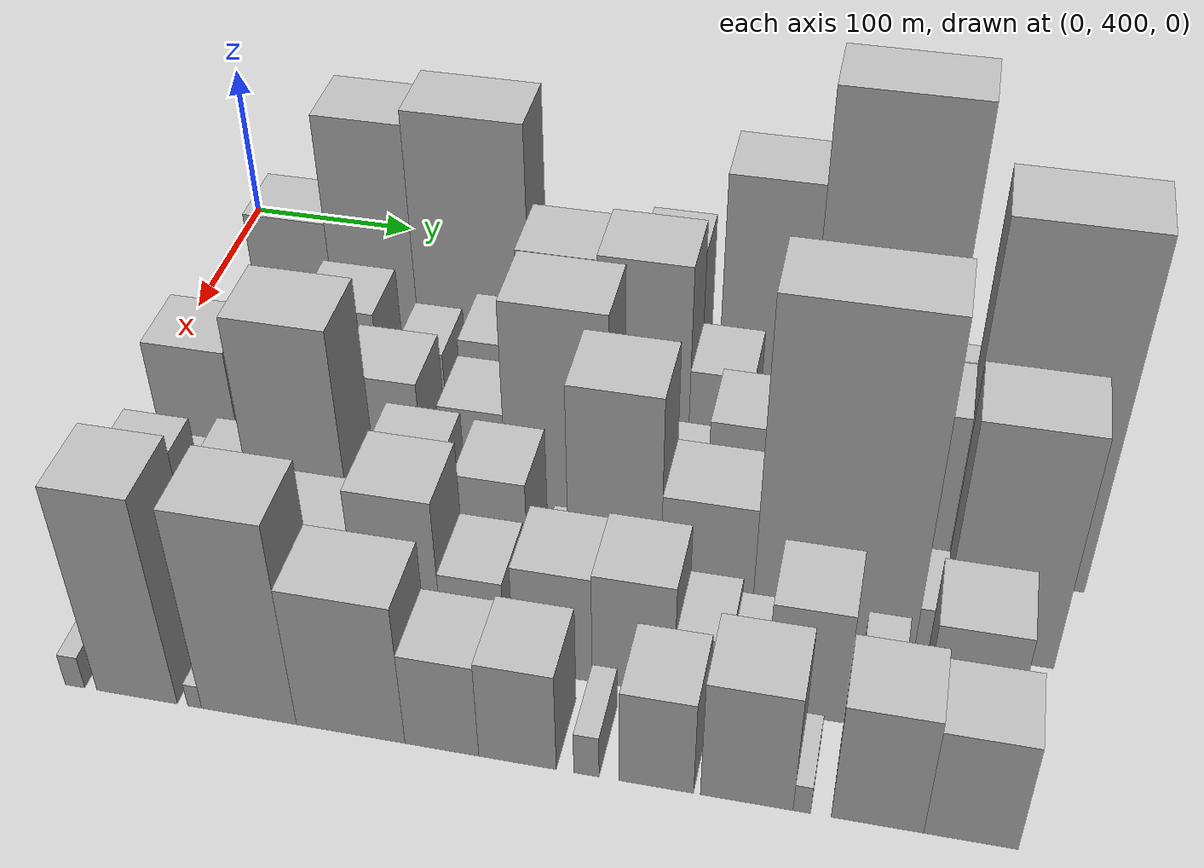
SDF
<sdf version="1.6">
 <world name="default">
  <model name="building_36">
   <static>1</static>
   <pose>100.0000 470.6741 0 0.000000 0.000000 0.000000</pose>
   <link name="link">
    <pose>0 0 43.50 0 0 0</pose>
    <collision name="collision"><geometry><box><size>40.0000 46.3534 87.0000</size></box></geometry></collision>
    <visual name="visual">
     <cast_shadows>0</cast_shadows>
     <geometry><box><size>40.0000 46.3534 87.0000</size></box></geometry>
     <material>
      <script>
       <uri>model://HANNAS_wall/materials/scripts</uri>
       <uri>model://HANNAS_wall/materials/textures</uri>
       <name>vrc/HANNAS_wall</name>
      </script>
     </material>
    </visual>
   </link>
  </model>
  <model name="building_37">
   <static>1</static>
   <pose>100.0000 518.1306 0 0.000000 0.000000 0.000000</pose>
   <link name="link">
    <pose>0 0 78.00 0 0 0</pose>
    <collision name="collision"><geometry><box><size>40.0000 48.5595 156.0000</size></box></geometry></collision>
    <visual name="visual">
     <cast_shadows>0</cast_shadows>
     <geometry><box><size>40.0000 48.5595 156.0000</size></box></geometry>
     <material>
      <script>
       <uri>model://HANNAS_wall/materials/scripts</uri>
       <uri>model://HANNAS_wall/materials/textures</uri>
       <name>vrc/HANNAS_wall</name>
      </script>
     </material>
    </visual>
   </link>
  </model>
  <model name="building_38">
   <static>1</static>
   <pose>100.0000 574.7804 0 0.000000 0.000000 0.000000</pose>
   <link name="link">
    <pose>0 0 82.50 0 0 0</pose>
    <collision name="collision"><geometry><box><size>40.0000 64.7402 165.0000</size></box></geometry></collision>
    <visual name="visual">
     <cast_shadows>0</cast_shadows>
     <geometry><box><size>40.0000 64.7402 165.0000</size></box></geometry>
     <material>
      <script>
       <uri>model://HANNAS_wall/materials/scripts</uri>
       <uri>model://HANNAS_wall/materials/textures</uri>
       <name>vrc/HANNAS_wall</name>
      </script>
     </material>
    </visual>
   </link>
  </model>
  <model name="building_39">
   <static>1</static>
   <pose>100.0000 615.2542 0 0.000000 0.000000 0.000000</pose>
   <link name="link">
    <pose>0 0 15.00 0 0 0</pose>
    <collision name="collision"><geometry><box><size>40.0000 16.2075 30.0000</size></box></geometry></collision>
    <visual name="visual">
     <cast_shadows>0</cast_shadows>
     <geometry><box><size>40.0000 16.2075 30.0000</size></box></geometry>
     <material>
      <script>
       <uri>model://HANNAS_wall/materials/scripts</uri>
       <uri>model://HANNAS_wall/materials/textures</uri>
       <name>vrc/HANNAS_wall</name>
      </script>
     </material>
    </visual>
   </link>
  </model>
  <model name="building_40">
   <static>1</static>
   <pose>100.0000 645.7013 0 0.000000 0.000000 0.000000</pose>
   <link name="link">
    <pose>0 0 39.00 0 0 0</pose>
    <collision name="collision"><geometry><box><size>40.0000 44.6866 78.0000</size></box></geometry></collision>
    <visual name="visual">
     <cast_shadows>0</cast_shadows>
     <geometry><box><size>40.0000 44.6866 78.0000</size></box></geometry>
     <material>
      <script>
       <uri>model://HANNAS_wall/materials/scripts</uri>
       <uri>model://HANNAS_wall/materials/textures</uri>
       <name>vrc/HANNAS_wall</name>
      </script>
     </material>
    </visual>
   </link>
  </model>
  <model name="building_41">
   <static>1</static>
   <pose>100.0000 685.2776 0 0.000000 0.000000 0.000000</pose>
   <link name="link">
    <pose>0 0 48.00 0 0 0</pose>
    <collision name="collision"><geometry><box><size>40.0000 34.4660 96.0000</size></box></geometry></collision>
    <visual name="visual">
     <cast_shadows>0</cast_shadows>
     <geometry><box><size>40.0000 34.4660 96.0000</size></box></geometry>
     <material>
      <script>
       <uri>model://HANNAS_wall/materials/scripts</uri>
       <uri>model://HANNAS_wall/materials/textures</uri>
       <name>vrc/HANNAS_wall</name>
      </script>
     </material>
    </visual>
   </link>
  </model>
  <model name="building_42">
   <static>1</static>
   <pose>100.0000 737.0859 0 0.000000 0.000000 0.000000</pose>
   <link name="link">
    <pose>0 0 75.00 0 0 0</pose>
    <collision name="collision"><geometry><box><size>40.0000 49.1505 150.0000</size></box></geometry></collision>
    <visual name="visual">
     <cast_shadows>0</cast_shadows>
     <geometry><box><size>40.0000 49.1505 150.0000</size></box></geometry>
     <material>
      <script>
       <uri>model://HANNAS_wall/materials/scripts</uri>
       <uri>model://HANNAS_wall/materials/textures</uri>
       <name>vrc/HANNAS_wall</name>
      </script>
     </material>
    </visual>
   </link>
  </model>
  <model name="building_43">
   <static>1</static>
   <pose>100.0000 799.0678 0 0.000000 0.000000 0.000000</pose>
   <link name="link">
    <pose>0 0 103.50 0 0 0</pose>
    <collision name="collision"><geometry><box><size>40.0000 74.8134 207.0000</size></box></geometry></collision>
    <visual name="visual">
     <cast_shadows>0</cast_shadows>
     <geometry><box><size>40.0000 74.8134 207.0000</size></box></geometry>
     <material>
      <script>
       <uri>model://HANNAS_wall/materials/scripts</uri>
       <uri>model://HANNAS_wall/materials/textures</uri>
       <name>vrc/HANNAS_wall</name>
      </script>
     </material>
    </visual>
   </link>
  </model>
  <model name="building_44">
   <static>1</static>
   <pose>100.0000 849.8463 0 0.000000 0.000000 0.000000</pose>
   <link name="link">
    <pose>0 0 15.00 0 0 0</pose>
    <collision name="collision"><geometry><box><size>40.0000 16.7435 30.0000</size></box></geometry></collision>
    <visual name="visual">
     <cast_shadows>0</cast_shadows>
     <geometry><box><size>40.0000 16.7435 30.0000</size></box></geometry>
     <material>
      <script>
       <uri>model://HANNAS_wall/materials/scripts</uri>
       <uri>model://HANNAS_wall/materials/textures</uri>
       <name>vrc/HANNAS_wall</name>
      </script>
     </material>
    </visual>
   </link>
  </model>
  <model name="building_45">
   <static>1</static>
   <pose>100.0000 881.0753 0 0.000000 0.000000 0.000000</pose>
   <link name="link">
    <pose>0 0 45.00 0 0 0</pose>
    <collision name="collision"><geometry><box><size>40.0000 45.7145 90.0000</size></box></geometry></collision>
    <visual name="visual">
     <cast_shadows>0</cast_shadows>
     <geometry><box><size>40.0000 45.7145 90.0000</size></box></geometry>
     <material>
      <script>
       <uri>model://HANNAS_wall/materials/scripts</uri>
       <uri>model://HANNAS_wall/materials/textures</uri>
       <name>vrc/HANNAS_wall</name>
      </script>
     </material>
    </visual>
   </link>
  </model>
  <model name="building_79">
   <static>1</static>
   <pose>152.0000 475.0976 0 0.000000 0.000000 0.000000</pose>
   <link name="link">
    <pose>0 0 22.50 0 0 0</pose>
    <collision name="collision"><geometry><box><size>40.0000 24.0922 45.0000</size></box></geometry></collision>
    <visual name="visual">
     <cast_shadows>0</cast_shadows>
     <geometry><box><size>40.0000 24.0922 45.0000</size></box></geometry>
     <material>
      <script>
       <uri>model://HANNAS_wall/materials/scripts</uri>
       <uri>model://HANNAS_wall/materials/textures</uri>
       <name>vrc/HANNAS_wall</name>
      </script>
     </material>
    </visual>
   </link>
  </model>
  <model name="building_80">
   <static>1</static>
   <pose>152.0000 516.3188 0 0.000000 0.000000 0.000000</pose>
   <link name="link">
    <pose>0 0 36.00 0 0 0</pose>
    <collision name="collision"><geometry><box><size>40.0000 40.3503 72.0000</size></box></geometry></collision>
    <visual name="visual">
     <cast_shadows>0</cast_shadows>
     <geometry><box><size>40.0000 40.3503 72.0000</size></box></geometry>
     <material>
      <script>
       <uri>model://HANNAS_wall/materials/scripts</uri>
       <uri>model://HANNAS_wall/materials/textures</uri>
       <name>vrc/HANNAS_wall</name>
      </script>
     </material>
    </visual>
   </link>
  </model>
  <model name="building_81">
   <static>1</static>
   <pose>152.0000 539.9436 0 0.000000 0.000000 0.000000</pose>
   <link name="link">
    <pose>0 0 7.50 0 0 0</pose>
    <collision name="collision"><geometry><box><size>40.0000 6.8993 15.0000</size></box></geometry></collision>
    <visual name="visual">
     <cast_shadows>0</cast_shadows>
     <geometry><box><size>40.0000 6.8993 15.0000</size></box></geometry>
     <material>
      <script>
       <uri>model://HANNAS_wall/materials/scripts</uri>
       <uri>model://HANNAS_wall/materials/textures</uri>
       <name>vrc/HANNAS_wall</name>
      </script>
     </material>
    </visual>
   </link>
  </model>
  <model name="building_82">
   <static>1</static>
   <pose>152.0000 559.5300 0 0.000000 0.000000 0.000000</pose>
   <link name="link">
    <pose>0 0 25.50 0 0 0</pose>
    <collision name="collision"><geometry><box><size>40.0000 26.2735 51.0000</size></box></geometry></collision>
    <visual name="visual">
     <cast_shadows>0</cast_shadows>
     <geometry><box><size>40.0000 26.2735 51.0000</size></box></geometry>
     <material>
      <script>
       <uri>model://HANNAS_wall/materials/scripts</uri>
       <uri>model://HANNAS_wall/materials/textures</uri>
       <name>vrc/HANNAS_wall</name>
      </script>
     </material>
    </visual>
   </link>
  </model>
  <model name="building_83">
   <static>1</static>
   <pose>152.0000 598.1043 0 0.000000 0.000000 0.000000</pose>
   <link name="link">
    <pose>0 0 31.50 0 0 0</pose>
    <collision name="collision"><geometry><box><size>40.0000 32.8750 63.0000</size></box></geometry></collision>
    <visual name="visual">
     <cast_shadows>0</cast_shadows>
     <geometry><box><size>40.0000 32.8750 63.0000</size></box></geometry>
     <material>
      <script>
       <uri>model://HANNAS_wall/materials/scripts</uri>
       <uri>model://HANNAS_wall/materials/textures</uri>
       <name>vrc/HANNAS_wall</name>
      </script>
     </material>
    </visual>
   </link>
  </model>
  <model name="building_84">
   <static>1</static>
   <pose>152.0000 635.3992 0 0.000000 0.000000 0.000000</pose>
   <link name="link">
    <pose>0 0 63.00 0 0 0</pose>
    <collision name="collision"><geometry><box><size>40.0000 41.7149 126.0000</size></box></geometry></collision>
    <visual name="visual">
     <cast_shadows>0</cast_shadows>
     <geometry><box><size>40.0000 41.7149 126.0000</size></box></geometry>
     <material>
      <script>
       <uri>model://HANNAS_wall/materials/scripts</uri>
       <uri>model://HANNAS_wall/materials/textures</uri>
       <name>vrc/HANNAS_wall</name>
      </script>
     </material>
    </visual>
   </link>
  </model>
  <model name="building_85">
   <static>1</static>
   <pose>152.0000 680.5668 0 0.000000 0.000000 0.000000</pose>
   <link name="link">
    <pose>0 0 64.50 0 0 0</pose>
    <collision name="collision"><geometry><box><size>40.0000 48.6203 129.0000</size></box></geometry></collision>
    <visual name="visual">
     <cast_shadows>0</cast_shadows>
     <geometry><box><size>40.0000 48.6203 129.0000</size></box></geometry>
     <material>
      <script>
       <uri>model://HANNAS_wall/materials/scripts</uri>
       <uri>model://HANNAS_wall/materials/textures</uri>
       <name>vrc/HANNAS_wall</name>
      </script>
     </material>
    </visual>
   </link>
  </model>
  <model name="building_86">
   <static>1</static>
   <pose>152.0000 721.2533 0 0.000000 0.000000 0.000000</pose>
   <link name="link">
    <pose>0 0 31.50 0 0 0</pose>
    <collision name="collision"><geometry><box><size>40.0000 32.7527 63.0000</size></box></geometry></collision>
    <visual name="visual">
     <cast_shadows>0</cast_shadows>
     <geometry><box><size>40.0000 32.7527 63.0000</size></box></geometry>
     <material>
      <script>
       <uri>model://HANNAS_wall/materials/scripts</uri>
       <uri>model://HANNAS_wall/materials/textures</uri>
       <name>vrc/HANNAS_wall</name>
      </script>
     </material>
    </visual>
   </link>
  </model>
  <model name="building_87">
   <static>1</static>
   <pose>152.0000 747.0359 0 0.000000 0.000000 0.000000</pose>
   <link name="link">
    <pose>0 0 16.50 0 0 0</pose>
    <collision name="collision"><geometry><box><size>40.0000 18.8125 33.0000</size></box></geometry></collision>
    <visual name="visual">
     <cast_shadows>0</cast_shadows>
     <geometry><box><size>40.0000 18.8125 33.0000</size></box></geometry>
     <material>
      <script>
       <uri>model://HANNAS_wall/materials/scripts</uri>
       <uri>model://HANNAS_wall/materials/textures</uri>
       <name>vrc/HANNAS_wall</name>
      </script>
     </material>
    </visual>
   </link>
  </model>
  <model name="building_88">
   <static>1</static>
   <pose>152.0000 766.4454 0 0.000000 0.000000 0.000000</pose>
   <link name="link">
    <pose>0 0 18.00 0 0 0</pose>
    <collision name="collision"><geometry><box><size>40.0000 20.0063 36.0000</size></box></geometry></collision>
    <visual name="visual">
     <cast_shadows>0</cast_shadows>
     <geometry><box><size>40.0000 20.0063 36.0000</size></box></geometry>
     <material>
      <script>
       <uri>model://HANNAS_wall/materials/scripts</uri>
       <uri>model://HANNAS_wall/materials/textures</uri>
       <name>vrc/HANNAS_wall</name>
      </script>
     </material>
    </visual>
   </link>
  </model>
  <model name="building_89">
   <static>1</static>
   <pose>152.0000 800.3809 0 0.000000 0.000000 0.000000</pose>
   <link name="link">
    <pose>0 0 28.50 0 0 0</pose>
    <collision name="collision"><geometry><box><size>40.0000 33.8649 57.0000</size></box></geometry></collision>
    <visual name="visual">
     <cast_shadows>0</cast_shadows>
     <geometry><box><size>40.0000 33.8649 57.0000</size></box></geometry>
     <material>
      <script>
       <uri>model://HANNAS_wall/materials/scripts</uri>
       <uri>model://HANNAS_wall/materials/textures</uri>
       <name>vrc/HANNAS_wall</name>
      </script>
     </material>
    </visual>
   </link>
  </model>
  <model name="building_90">
   <static>1</static>
   <pose>152.0000 832.4794 0 0.000000 0.000000 0.000000</pose>
   <link name="link">
    <pose>0 0 30.00 0 0 0</pose>
    <collision name="collision"><geometry><box><size>40.0000 30.3319 60.0000</size></box></geometry></collision>
    <visual name="visual">
     <cast_shadows>0</cast_shadows>
     <geometry><box><size>40.0000 30.3319 60.0000</size></box></geometry>
     <material>
      <script>
       <uri>model://HANNAS_wall/materials/scripts</uri>
       <uri>model://HANNAS_wall/materials/textures</uri>
       <name>vrc/HANNAS_wall</name>
      </script>
     </material>
    </visual>
   </link>
  </model>
  <model name="building_91">
   <static>1</static>
   <pose>152.0000 857.3833 0 0.000000 0.000000 0.000000</pose>
   <link name="link">
    <pose>0 0 18.00 0 0 0</pose>
    <collision name="collision"><geometry><box><size>40.0000 19.4759 36.0000</size></box></geometry></collision>
    <visual name="visual">
     <cast_shadows>0</cast_shadows>
     <geometry><box><size>40.0000 19.4759 36.0000</size></box></geometry>
     <material>
      <script>
       <uri>model://HANNAS_wall/materials/scripts</uri>
       <uri>model://HANNAS_wall/materials/textures</uri>
       <name>vrc/HANNAS_wall</name>
      </script>
     </material>
    </visual>
   </link>
  </model>
  <model name="building_122">
   <static>1</static>
   <pose>204.0000 453.1643 0 0.000000 0.000000 0.000000</pose>
   <link name="link">
    <pose>0 0 39.00 0 0 0</pose>
    <collision name="collision"><geometry><box><size>40.0000 44.1281 78.0000</size></box></geometry></collision>
    <visual name="visual">
     <cast_shadows>0</cast_shadows>
     <geometry><box><size>40.0000 44.1281 78.0000</size></box></geometry>
     <material>
      <script>
       <uri>model://HANNAS_wall/materials/scripts</uri>
       <uri>model://HANNAS_wall/materials/textures</uri>
       <name>vrc/HANNAS_wall</name>
      </script>
     </material>
    </visual>
   </link>
  </model>
  <model name="building_123">
   <static>1</static>
   <pose>204.0000 504.6536 0 0.000000 0.000000 0.000000</pose>
   <link name="link">
    <pose>0 0 37.50 0 0 0</pose>
    <collision name="collision"><geometry><box><size>40.0000 40.8504 75.0000</size></box></geometry></collision>
    <visual name="visual">
     <cast_shadows>0</cast_shadows>
     <geometry><box><size>40.0000 40.8504 75.0000</size></box></geometry>
     <material>
      <script>
       <uri>model://HANNAS_wall/materials/scripts</uri>
       <uri>model://HANNAS_wall/materials/textures</uri>
       <name>vrc/HANNAS_wall</name>
      </script>
     </material>
    </visual>
   </link>
  </model>
  <model name="building_124">
   <static>1</static>
   <pose>204.0000 554.7654 0 0.000000 0.000000 0.000000</pose>
   <link name="link">
    <pose>0 0 37.50 0 0 0</pose>
    <collision name="collision"><geometry><box><size>40.0000 41.3731 75.0000</size></box></geometry></collision>
    <visual name="visual">
     <cast_shadows>0</cast_shadows>
     <geometry><box><size>40.0000 41.3731 75.0000</size></box></geometry>
     <material>
      <script>
       <uri>model://HANNAS_wall/materials/scripts</uri>
       <uri>model://HANNAS_wall/materials/textures</uri>
       <name>vrc/HANNAS_wall</name>
      </script>
     </material>
    </visual>
   </link>
  </model>
  <model name="building_125">
   <static>1</static>
   <pose>204.0000 602.3839 0 0.000000 0.000000 0.000000</pose>
   <link name="link">
    <pose>0 0 31.50 0 0 0</pose>
    <collision name="collision"><geometry><box><size>40.0000 33.8640 63.0000</size></box></geometry></collision>
    <visual name="visual">
     <cast_shadows>0</cast_shadows>
     <geometry><box><size>40.0000 33.8640 63.0000</size></box></geometry>
     <material>
      <script>
       <uri>model://HANNAS_wall/materials/scripts</uri>
       <uri>model://HANNAS_wall/materials/textures</uri>
       <name>vrc/HANNAS_wall</name>
      </script>
     </material>
    </visual>
   </link>
  </model>
  <model name="building_126">
   <static>1</static>
   <pose>204.0000 646.3026 0 0.000000 0.000000 0.000000</pose>
   <link name="link">
    <pose>0 0 67.50 0 0 0</pose>
    <collision name="collision"><geometry><box><size>40.0000 53.9734 135.0000</size></box></geometry></collision>
    <visual name="visual">
     <cast_shadows>0</cast_shadows>
     <geometry><box><size>40.0000 53.9734 135.0000</size></box></geometry>
     <material>
      <script>
       <uri>model://HANNAS_wall/materials/scripts</uri>
       <uri>model://HANNAS_wall/materials/textures</uri>
       <name>vrc/HANNAS_wall</name>
      </script>
     </material>
    </visual>
   </link>
  </model>
  <model name="building_127">
   <static>1</static>
   <pose>204.0000 687.3481 0 0.000000 0.000000 0.000000</pose>
   <link name="link">
    <pose>0 0 27.00 0 0 0</pose>
    <collision name="collision"><geometry><box><size>40.0000 28.1176 54.0000</size></box></geometry></collision>
    <visual name="visual">
     <cast_shadows>0</cast_shadows>
     <geometry><box><size>40.0000 28.1176 54.0000</size></box></geometry>
     <material>
      <script>
       <uri>model://HANNAS_wall/materials/scripts</uri>
       <uri>model://HANNAS_wall/materials/textures</uri>
       <name>vrc/HANNAS_wall</name>
      </script>
     </material>
    </visual>
   </link>
  </model>
  <model name="building_128">
   <static>1</static>
   <pose>204.0000 712.2546 0 0.000000 0.000000 0.000000</pose>
   <link name="link">
    <pose>0 0 19.50 0 0 0</pose>
    <collision name="collision"><geometry><box><size>40.0000 21.6954 39.0000</size></box></geometry></collision>
    <visual name="visual">
     <cast_shadows>0</cast_shadows>
     <geometry><box><size>40.0000 21.6954 39.0000</size></box></geometry>
     <material>
      <script>
       <uri>model://HANNAS_wall/materials/scripts</uri>
       <uri>model://HANNAS_wall/materials/textures</uri>
       <name>vrc/HANNAS_wall</name>
      </script>
     </material>
    </visual>
   </link>
  </model>
  <model name="building_129">
   <static>1</static>
   <pose>204.0000 745.1408 0 0.000000 0.000000 0.000000</pose>
   <link name="link">
    <pose>0 0 39.00 0 0 0</pose>
    <collision name="collision"><geometry><box><size>40.0000 44.0769 78.0000</size></box></geometry></collision>
    <visual name="visual">
     <cast_shadows>0</cast_shadows>
     <geometry><box><size>40.0000 44.0769 78.0000</size></box></geometry>
     <material>
      <script>
       <uri>model://HANNAS_wall/materials/scripts</uri>
       <uri>model://HANNAS_wall/materials/textures</uri>
       <name>vrc/HANNAS_wall</name>
      </script>
     </material>
    </visual>
   </link>
  </model>
  <model name="building_130">
   <static>1</static>
   <pose>204.0000 788.3259 0 0.000000 0.000000 0.000000</pose>
   <link name="link">
    <pose>0 0 67.50 0 0 0</pose>
    <collision name="collision"><geometry><box><size>40.0000 42.2933 135.0000</size></box></geometry></collision>
    <visual name="visual">
     <cast_shadows>0</cast_shadows>
     <geometry><box><size>40.0000 42.2933 135.0000</size></box></geometry>
     <material>
      <script>
       <uri>model://HANNAS_wall/materials/scripts</uri>
       <uri>model://HANNAS_wall/materials/textures</uri>
       <name>vrc/HANNAS_wall</name>
      </script>
     </material>
    </visual>
   </link>
  </model>
  <model name="building_131">
   <static>1</static>
   <pose>204.0000 826.9525 0 0.000000 0.000000 0.000000</pose>
   <link name="link">
    <pose>0 0 51.00 0 0 0</pose>
    <collision name="collision"><geometry><box><size>40.0000 34.9600 102.0000</size></box></geometry></collision>
    <visual name="visual">
     <cast_shadows>0</cast_shadows>
     <geometry><box><size>40.0000 34.9600 102.0000</size></box></geometry>
     <material>
      <script>
       <uri>model://HANNAS_wall/materials/scripts</uri>
       <uri>model://HANNAS_wall/materials/textures</uri>
       <name>vrc/HANNAS_wall</name>
      </script>
     </material>
    </visual>
   </link>
  </model>
  <model name="building_132">
   <static>1</static>
   <pose>204.0000 878.0598 0 0.000000 0.000000 0.000000</pose>
   <link name="link">
    <pose>0 0 108.00 0 0 0</pose>
    <collision name="collision"><geometry><box><size>40.0000 67.2545 216.0000</size></box></geometry></collision>
    <visual name="visual">
     <cast_shadows>0</cast_shadows>
     <geometry><box><size>40.0000 67.2545 216.0000</size></box></geometry>
     <material>
      <script>
       <uri>model://HANNAS_wall/materials/scripts</uri>
       <uri>model://HANNAS_wall/materials/textures</uri>
       <name>vrc/HANNAS_wall</name>
      </script>
     </material>
    </visual>
   </link>
  </model>
  <model name="building_173">
   <static>1</static>
   <pose>256.0000 463.2901 0 0.000000 0.000000 0.000000</pose>
   <link name="link">
    <pose>0 0 15.00 0 0 0</pose>
    <collision name="collision"><geometry><box><size>40.0000 17.7495 30.0000</size></box></geometry></collision>
    <visual name="visual">
     <cast_shadows>0</cast_shadows>
     <geometry><box><size>40.0000 17.7495 30.0000</size></box></geometry>
     <material>
      <script>
       <uri>model://HANNAS_wall/materials/scripts</uri>
       <uri>model://HANNAS_wall/materials/textures</uri>
       <name>vrc/HANNAS_wall</name>
      </script>
     </material>
    </visual>
   </link>
  </model>
  <model name="building_174">
   <static>1</static>
   <pose>256.0000 483.9079 0 0.000000 0.000000 0.000000</pose>
   <link name="link">
    <pose>0 0 22.50 0 0 0</pose>
    <collision name="collision"><geometry><box><size>40.0000 23.4860 45.0000</size></box></geometry></collision>
    <visual name="visual">
     <cast_shadows>0</cast_shadows>
     <geometry><box><size>40.0000 23.4860 45.0000</size></box></geometry>
     <material>
      <script>
       <uri>model://HANNAS_wall/materials/scripts</uri>
       <uri>model://HANNAS_wall/materials/textures</uri>
       <name>vrc/HANNAS_wall</name>
      </script>
     </material>
    </visual>
   </link>
  </model>
  <model name="building_175">
   <static>1</static>
   <pose>256.0000 528.8921 0 0.000000 0.000000 0.000000</pose>
   <link name="link">
    <pose>0 0 73.50 0 0 0</pose>
    <collision name="collision"><geometry><box><size>40.0000 50.4824 147.0000</size></box></geometry></collision>
    <visual name="visual">
     <cast_shadows>0</cast_shadows>
     <geometry><box><size>40.0000 50.4824 147.0000</size></box></geometry>
     <material>
      <script>
       <uri>model://HANNAS_wall/materials/scripts</uri>
       <uri>model://HANNAS_wall/materials/textures</uri>
       <name>vrc/HANNAS_wall</name>
      </script>
     </material>
    </visual>
   </link>
  </model>
  <model name="building_176">
   <static>1</static>
   <pose>256.0000 582.8409 0 0.000000 0.000000 0.000000</pose>
   <link name="link">
    <pose>0 0 36.00 0 0 0</pose>
    <collision name="collision"><geometry><box><size>40.0000 37.4152 72.0000</size></box></geometry></collision>
    <visual name="visual">
     <cast_shadows>0</cast_shadows>
     <geometry><box><size>40.0000 37.4152 72.0000</size></box></geometry>
     <material>
      <script>
       <uri>model://HANNAS_wall/materials/scripts</uri>
       <uri>model://HANNAS_wall/materials/textures</uri>
       <name>vrc/HANNAS_wall</name>
      </script>
     </material>
    </visual>
   </link>
  </model>
  <model name="building_177">
   <static>1</static>
   <pose>256.0000 626.1542 0 0.000000 0.000000 0.000000</pose>
   <link name="link">
    <pose>0 0 34.50 0 0 0</pose>
    <collision name="collision"><geometry><box><size>40.0000 35.2115 69.0000</size></box></geometry></collision>
    <visual name="visual">
     <cast_shadows>0</cast_shadows>
     <geometry><box><size>40.0000 35.2115 69.0000</size></box></geometry>
     <material>
      <script>
       <uri>model://HANNAS_wall/materials/scripts</uri>
       <uri>model://HANNAS_wall/materials/textures</uri>
       <name>vrc/HANNAS_wall</name>
      </script>
     </material>
    </visual>
   </link>
  </model>
  <model name="building_178">
   <static>1</static>
   <pose>256.0000 652.1336 0 0.000000 0.000000 0.000000</pose>
   <link name="link">
    <pose>0 0 9.00 0 0 0</pose>
    <collision name="collision"><geometry><box><size>40.0000 8.7474 18.0000</size></box></geometry></collision>
    <visual name="visual">
     <cast_shadows>0</cast_shadows>
     <geometry><box><size>40.0000 8.7474 18.0000</size></box></geometry>
     <material>
      <script>
       <uri>model://HANNAS_wall/materials/scripts</uri>
       <uri>model://HANNAS_wall/materials/textures</uri>
       <name>vrc/HANNAS_wall</name>
      </script>
     </material>
    </visual>
   </link>
  </model>
  <model name="building_179">
   <static>1</static>
   <pose>256.0000 660.2756 0 0.000000 0.000000 0.000000</pose>
   <link name="link">
    <pose>0 0 9.00 0 0 0</pose>
    <collision name="collision"><geometry><box><size>40.0000 7.5365 18.0000</size></box></geometry></collision>
    <visual name="visual">
     <cast_shadows>0</cast_shadows>
     <geometry><box><size>40.0000 7.5365 18.0000</size></box></geometry>
     <material>
      <script>
       <uri>model://HANNAS_wall/materials/scripts</uri>
       <uri>model://HANNAS_wall/materials/textures</uri>
       <name>vrc/HANNAS_wall</name>
      </script>
     </material>
    </visual>
   </link>
  </model>
  <model name="building_180">
   <static>1</static>
   <pose>256.0000 686.7437 0 0.000000 0.000000 0.000000</pose>
   <link name="link">
    <pose>0 0 67.50 0 0 0</pose>
    <collision name="collision"><geometry><box><size>40.0000 45.3997 135.0000</size></box></geometry></collision>
    <visual name="visual">
     <cast_shadows>0</cast_shadows>
     <geometry><box><size>40.0000 45.3997 135.0000</size></box></geometry>
     <material>
      <script>
       <uri>model://HANNAS_wall/materials/scripts</uri>
       <uri>model://HANNAS_wall/materials/textures</uri>
       <name>vrc/HANNAS_wall</name>
      </script>
     </material>
    </visual>
   </link>
  </model>
  <model name="building_181">
   <static>1</static>
   <pose>256.0000 731.9020 0 0.000000 0.000000 0.000000</pose>
   <link name="link">
    <pose>0 0 37.50 0 0 0</pose>
    <collision name="collision"><geometry><box><size>40.0000 44.9168 75.0000</size></box></geometry></collision>
    <visual name="visual">
     <cast_shadows>0</cast_shadows>
     <geometry><box><size>40.0000 44.9168 75.0000</size></box></geometry>
     <material>
      <script>
       <uri>model://HANNAS_wall/materials/scripts</uri>
       <uri>model://HANNAS_wall/materials/textures</uri>
       <name>vrc/HANNAS_wall</name>
      </script>
     </material>
    </visual>
   </link>
  </model>
  <model name="building_182">
   <static>1</static>
   <pose>256.0000 793.6255 0 0.000000 0.000000 0.000000</pose>
   <link name="link">
    <pose>0 0 100.50 0 0 0</pose>
    <collision name="collision"><geometry><box><size>40.0000 78.5302 201.0000</size></box></geometry></collision>
    <visual name="visual">
     <cast_shadows>0</cast_shadows>
     <geometry><box><size>40.0000 78.5302 201.0000</size></box></geometry>
     <material>
      <script>
       <uri>model://HANNAS_wall/materials/scripts</uri>
       <uri>model://HANNAS_wall/materials/textures</uri>
       <name>vrc/HANNAS_wall</name>
      </script>
     </material>
    </visual>
   </link>
  </model>
  <model name="building_183">
   <static>1</static>
   <pose>256.0000 838.4542 0 0.000000 0.000000 0.000000</pose>
   <link name="link">
    <pose>0 0 13.50 0 0 0</pose>
    <collision name="collision"><geometry><box><size>40.0000 11.1271 27.0000</size></box></geometry></collision>
    <visual name="visual">
     <cast_shadows>0</cast_shadows>
     <geometry><box><size>40.0000 11.1271 27.0000</size></box></geometry>
     <material>
      <script>
       <uri>model://HANNAS_wall/materials/scripts</uri>
       <uri>model://HANNAS_wall/materials/textures</uri>
       <name>vrc/HANNAS_wall</name>
      </script>
     </material>
    </visual>
   </link>
  </model>
  <model name="building_184">
   <static>1</static>
   <pose>256.0000 870.8990 0 0.000000 0.000000 0.000000</pose>
   <link name="link">
    <pose>0 0 73.50 0 0 0</pose>
    <collision name="collision"><geometry><box><size>40.0000 53.7626 147.0000</size></box></geometry></collision>
    <visual name="visual">
     <cast_shadows>0</cast_shadows>
     <geometry><box><size>40.0000 53.7626 147.0000</size></box></geometry>
     <material>
      <script>
       <uri>model://HANNAS_wall/materials/scripts</uri>
       <uri>model://HANNAS_wall/materials/textures</uri>
       <name>vrc/HANNAS_wall</name>
      </script>
     </material>
    </visual>
   </link>
  </model>
  <model name="building_219">
   <static>1</static>
   <pose>308.0000 469.7020 0 0.000000 0.000000 0.000000</pose>
   <link name="link">
    <pose>0 0 46.50 0 0 0</pose>
    <collision name="collision"><geometry><box><size>40.0000 32.2006 93.0000</size></box></geometry></collision>
    <visual name="visual">
     <cast_shadows>0</cast_shadows>
     <geometry><box><size>40.0000 32.2006 93.0000</size></box></geometry>
     <material>
      <script>
       <uri>model://HANNAS_wall/materials/scripts</uri>
       <uri>model://HANNAS_wall/materials/textures</uri>
       <name>vrc/HANNAS_wall</name>
      </script>
     </material>
    </visual>
   </link>
  </model>
  <model name="building_220">
   <static>1</static>
   <pose>308.0000 507.3337 0 0.000000 0.000000 0.000000</pose>
   <link name="link">
    <pose>0 0 37.50 0 0 0</pose>
    <collision name="collision"><geometry><box><size>40.0000 43.0629 75.0000</size></box></geometry></collision>
    <visual name="visual">
     <cast_shadows>0</cast_shadows>
     <geometry><box><size>40.0000 43.0629 75.0000</size></box></geometry>
     <material>
      <script>
       <uri>model://HANNAS_wall/materials/scripts</uri>
       <uri>model://HANNAS_wall/materials/textures</uri>
       <name>vrc/HANNAS_wall</name>
      </script>
     </material>
    </visual>
   </link>
  </model>
  <model name="building_221">
   <static>1</static>
   <pose>308.0000 554.7240 0 0.000000 0.000000 0.000000</pose>
   <link name="link">
    <pose>0 0 34.50 0 0 0</pose>
    <collision name="collision"><geometry><box><size>40.0000 39.7176 69.0000</size></box></geometry></collision>
    <visual name="visual">
     <cast_shadows>0</cast_shadows>
     <geometry><box><size>40.0000 39.7176 69.0000</size></box></geometry>
     <material>
      <script>
       <uri>model://HANNAS_wall/materials/scripts</uri>
       <uri>model://HANNAS_wall/materials/textures</uri>
       <name>vrc/HANNAS_wall</name>
      </script>
     </material>
    </visual>
   </link>
  </model>
  <model name="building_222">
   <static>1</static>
   <pose>308.0000 594.8753 0 0.000000 0.000000 0.000000</pose>
   <link name="link">
    <pose>0 0 51.00 0 0 0</pose>
    <collision name="collision"><geometry><box><size>40.0000 40.5850 102.0000</size></box></geometry></collision>
    <visual name="visual">
     <cast_shadows>0</cast_shadows>
     <geometry><box><size>40.0000 40.5850 102.0000</size></box></geometry>
     <material>
      <script>
       <uri>model://HANNAS_wall/materials/scripts</uri>
       <uri>model://HANNAS_wall/materials/textures</uri>
       <name>vrc/HANNAS_wall</name>
      </script>
     </material>
    </visual>
   </link>
  </model>
  <model name="building_223">
   <static>1</static>
   <pose>308.0000 630.3229 0 0.000000 0.000000 0.000000</pose>
   <link name="link">
    <pose>0 0 28.50 0 0 0</pose>
    <collision name="collision"><geometry><box><size>40.0000 30.3102 57.0000</size></box></geometry></collision>
    <visual name="visual">
     <cast_shadows>0</cast_shadows>
     <geometry><box><size>40.0000 30.3102 57.0000</size></box></geometry>
     <material>
      <script>
       <uri>model://HANNAS_wall/materials/scripts</uri>
       <uri>model://HANNAS_wall/materials/textures</uri>
       <name>vrc/HANNAS_wall</name>
      </script>
     </material>
    </visual>
   </link>
  </model>
  <model name="building_224">
   <static>1</static>
   <pose>308.0000 668.1729 0 0.000000 0.000000 0.000000</pose>
   <link name="link">
    <pose>0 0 34.50 0 0 0</pose>
    <collision name="collision"><geometry><box><size>40.0000 37.3899 69.0000</size></box></geometry></collision>
    <visual name="visual">
     <cast_shadows>0</cast_shadows>
     <geometry><box><size>40.0000 37.3899 69.0000</size></box></geometry>
     <material>
      <script>
       <uri>model://HANNAS_wall/materials/scripts</uri>
       <uri>model://HANNAS_wall/materials/textures</uri>
       <name>vrc/HANNAS_wall</name>
      </script>
     </material>
    </visual>
   </link>
  </model>
  <model name="building_225">
   <static>1</static>
   <pose>308.0000 706.2412 0 0.000000 0.000000 0.000000</pose>
   <link name="link">
    <pose>0 0 36.00 0 0 0</pose>
    <collision name="collision"><geometry><box><size>40.0000 38.7467 72.0000</size></box></geometry></collision>
    <visual name="visual">
     <cast_shadows>0</cast_shadows>
     <geometry><box><size>40.0000 38.7467 72.0000</size></box></geometry>
     <material>
      <script>
       <uri>model://HANNAS_wall/materials/scripts</uri>
       <uri>model://HANNAS_wall/materials/textures</uri>
       <name>vrc/HANNAS_wall</name>
      </script>
     </material>
    </visual>
   </link>
  </model>
  <model name="building_226">
   <static>1</static>
   <pose>308.0000 738.0550 0 0.000000 0.000000 0.000000</pose>
   <link name="link">
    <pose>0 0 21.00 0 0 0</pose>
    <collision name="collision"><geometry><box><size>40.0000 24.8809 42.0000</size></box></geometry></collision>
    <visual name="visual">
     <cast_shadows>0</cast_shadows>
     <geometry><box><size>40.0000 24.8809 42.0000</size></box></geometry>
     <material>
      <script>
       <uri>model://HANNAS_wall/materials/scripts</uri>
       <uri>model://HANNAS_wall/materials/textures</uri>
       <name>vrc/HANNAS_wall</name>
      </script>
     </material>
    </visual>
   </link>
  </model>
  <model name="building_227">
   <static>1</static>
   <pose>308.0000 759.2062 0 0.000000 0.000000 0.000000</pose>
   <link name="link">
    <pose>0 0 16.50 0 0 0</pose>
    <collision name="collision"><geometry><box><size>40.0000 17.4214 33.0000</size></box></geometry></collision>
    <visual name="visual">
     <cast_shadows>0</cast_shadows>
     <geometry><box><size>40.0000 17.4214 33.0000</size></box></geometry>
     <material>
      <script>
       <uri>model://HANNAS_wall/materials/scripts</uri>
       <uri>model://HANNAS_wall/materials/textures</uri>
       <name>vrc/HANNAS_wall</name>
      </script>
     </material>
    </visual>
   </link>
  </model>
  <model name="building_228">
   <static>1</static>
   <pose>308.0000 786.1084 0 0.000000 0.000000 0.000000</pose>
   <link name="link">
    <pose>0 0 36.00 0 0 0</pose>
    <collision name="collision"><geometry><box><size>40.0000 36.3830 72.0000</size></box></geometry></collision>
    <visual name="visual">
     <cast_shadows>0</cast_shadows>
     <geometry><box><size>40.0000 36.3830 72.0000</size></box></geometry>
     <material>
      <script>
       <uri>model://HANNAS_wall/materials/scripts</uri>
       <uri>model://HANNAS_wall/materials/textures</uri>
       <name>vrc/HANNAS_wall</name>
      </script>
     </material>
    </visual>
   </link>
  </model>
  <model name="building_229">
   <static>1</static>
   <pose>308.0000 819.0224 0 0.000000 0.000000 0.000000</pose>
   <link name="link">
    <pose>0 0 16.50 0 0 0</pose>
    <collision name="collision"><geometry><box><size>40.0000 19.4449 33.0000</size></box></geometry></collision>
    <visual name="visual">
     <cast_shadows>0</cast_shadows>
     <geometry><box><size>40.0000 19.4449 33.0000</size></box></geometry>
     <material>
      <script>
       <uri>model://HANNAS_wall/materials/scripts</uri>
       <uri>model://HANNAS_wall/materials/textures</uri>
       <name>vrc/HANNAS_wall</name>
      </script>
     </material>
    </visual>
   </link>
  </model>
  <model name="building_230">
   <static>1</static>
   <pose>308.0000 859.1237 0 0.000000 0.000000 0.000000</pose>
   <link name="link">
    <pose>0 0 37.50 0 0 0</pose>
    <collision name="collision"><geometry><box><size>40.0000 40.7578 75.0000</size></box></geometry></collision>
    <visual name="visual">
     <cast_shadows>0</cast_shadows>
     <geometry><box><size>40.0000 40.7578 75.0000</size></box></geometry>
     <material>
      <script>
       <uri>model://HANNAS_wall/materials/scripts</uri>
       <uri>model://HANNAS_wall/materials/textures</uri>
       <name>vrc/HANNAS_wall</name>
      </script>
     </material>
    </visual>
   </link>
  </model>
  <model name="building_273">
   <static>1</static>
   <pose>360.0000 451.7880 0 0.000000 0.000000 0.000000</pose>
   <link name="link">
    <pose>0 0 10.50 0 0 0</pose>
    <collision name="collision"><geometry><box><size>40.0000 9.7114 21.0000</size></box></geometry></collision>
    <visual name="visual">
     <cast_shadows>0</cast_shadows>
     <geometry><box><size>40.0000 9.7114 21.0000</size></box></geometry>
     <material>
      <script>
       <uri>model://HANNAS_wall/materials/scripts</uri>
       <uri>model://HANNAS_wall/materials/textures</uri>
       <name>vrc/HANNAS_wall</name>
      </script>
     </material>
    </visual>
   </link>
  </model>
  <model name="building_274">
   <static>1</static>
   <pose>360.0000 482.5586 0 0.000000 0.000000 0.000000</pose>
   <link name="link">
    <pose>0 0 66.00 0 0 0</pose>
    <collision name="collision"><geometry><box><size>40.0000 39.8298 132.0000</size></box></geometry></collision>
    <visual name="visual">
     <cast_shadows>0</cast_shadows>
     <geometry><box><size>40.0000 39.8298 132.0000</size></box></geometry>
     <material>
      <script>
       <uri>model://HANNAS_wall/materials/scripts</uri>
       <uri>model://HANNAS_wall/materials/textures</uri>
       <name>vrc/HANNAS_wall</name>
      </script>
     </material>
    </visual>
   </link>
  </model>
  <model name="building_275">
   <static>1</static>
   <pose>360.0000 510.8925 0 0.000000 0.000000 0.000000</pose>
   <link name="link">
    <pose>0 0 7.50 0 0 0</pose>
    <collision name="collision"><geometry><box><size>40.0000 6.8379 15.0000</size></box></geometry></collision>
    <visual name="visual">
     <cast_shadows>0</cast_shadows>
     <geometry><box><size>40.0000 6.8379 15.0000</size></box></geometry>
     <material>
      <script>
       <uri>model://HANNAS_wall/materials/scripts</uri>
       <uri>model://HANNAS_wall/materials/textures</uri>
       <name>vrc/HANNAS_wall</name>
      </script>
     </material>
    </visual>
   </link>
  </model>
  <model name="building_276">
   <static>1</static>
   <pose>360.0000 537.2679 0 0.000000 0.000000 0.000000</pose>
   <link name="link">
    <pose>0 0 64.50 0 0 0</pose>
    <collision name="collision"><geometry><box><size>40.0000 45.9131 129.0000</size></box></geometry></collision>
    <visual name="visual">
     <cast_shadows>0</cast_shadows>
     <geometry><box><size>40.0000 45.9131 129.0000</size></box></geometry>
     <material>
      <script>
       <uri>model://HANNAS_wall/materials/scripts</uri>
       <uri>model://HANNAS_wall/materials/textures</uri>
       <name>vrc/HANNAS_wall</name>
      </script>
     </material>
    </visual>
   </link>
  </model>
  <model name="building_277">
   <static>1</static>
   <pose>360.0000 586.0103 0 0.000000 0.000000 0.000000</pose>
   <link name="link">
    <pose>0 0 45.00 0 0 0</pose>
    <collision name="collision"><geometry><box><size>40.0000 51.5716 90.0000</size></box></geometry></collision>
    <visual name="visual">
     <cast_shadows>0</cast_shadows>
     <geometry><box><size>40.0000 51.5716 90.0000</size></box></geometry>
     <material>
      <script>
       <uri>model://HANNAS_wall/materials/scripts</uri>
       <uri>model://HANNAS_wall/materials/textures</uri>
       <name>vrc/HANNAS_wall</name>
      </script>
     </material>
    </visual>
   </link>
  </model>
  <model name="building_278">
   <static>1</static>
   <pose>360.0000 629.0100 0 0.000000 0.000000 0.000000</pose>
   <link name="link">
    <pose>0 0 30.00 0 0 0</pose>
    <collision name="collision"><geometry><box><size>40.0000 34.4278 60.0000</size></box></geometry></collision>
    <visual name="visual">
     <cast_shadows>0</cast_shadows>
     <geometry><box><size>40.0000 34.4278 60.0000</size></box></geometry>
     <material>
      <script>
       <uri>model://HANNAS_wall/materials/scripts</uri>
       <uri>model://HANNAS_wall/materials/textures</uri>
       <name>vrc/HANNAS_wall</name>
      </script>
     </material>
    </visual>
   </link>
  </model>
  <model name="building_279">
   <static>1</static>
   <pose>360.0000 664.0543 0 0.000000 0.000000 0.000000</pose>
   <link name="link">
    <pose>0 0 31.50 0 0 0</pose>
    <collision name="collision"><geometry><box><size>40.0000 35.6609 63.0000</size></box></geometry></collision>
    <visual name="visual">
     <cast_shadows>0</cast_shadows>
     <geometry><box><size>40.0000 35.6609 63.0000</size></box></geometry>
     <material>
      <script>
       <uri>model://HANNAS_wall/materials/scripts</uri>
       <uri>model://HANNAS_wall/materials/textures</uri>
       <name>vrc/HANNAS_wall</name>
      </script>
     </material>
    </visual>
   </link>
  </model>
  <model name="building_280">
   <static>1</static>
   <pose>360.0000 695.6269 0 0.000000 0.000000 0.000000</pose>
   <link name="link">
    <pose>0 0 13.50 0 0 0</pose>
    <collision name="collision"><geometry><box><size>40.0000 11.4842 27.0000</size></box></geometry></collision>
    <visual name="visual">
     <cast_shadows>0</cast_shadows>
     <geometry><box><size>40.0000 11.4842 27.0000</size></box></geometry>
     <material>
      <script>
       <uri>model://HANNAS_wall/materials/scripts</uri>
       <uri>model://HANNAS_wall/materials/textures</uri>
       <name>vrc/HANNAS_wall</name>
      </script>
     </material>
    </visual>
   </link>
  </model>
  <model name="building_281">
   <static>1</static>
   <pose>360.0000 727.1300 0 0.000000 0.000000 0.000000</pose>
   <link name="link">
    <pose>0 0 30.00 0 0 0</pose>
    <collision name="collision"><geometry><box><size>40.0000 33.5220 60.0000</size></box></geometry></collision>
    <visual name="visual">
     <cast_shadows>0</cast_shadows>
     <geometry><box><size>40.0000 33.5220 60.0000</size></box></geometry>
     <material>
      <script>
       <uri>model://HANNAS_wall/materials/scripts</uri>
       <uri>model://HANNAS_wall/materials/textures</uri>
       <name>vrc/HANNAS_wall</name>
      </script>
     </material>
    </visual>
   </link>
  </model>
  <model name="building_282">
   <static>1</static>
   <pose>360.0000 767.3673 0 0.000000 0.000000 0.000000</pose>
   <link name="link">
    <pose>0 0 37.50 0 0 0</pose>
    <collision name="collision"><geometry><box><size>40.0000 40.9527 75.0000</size></box></geometry></collision>
    <visual name="visual">
     <cast_shadows>0</cast_shadows>
     <geometry><box><size>40.0000 40.9527 75.0000</size></box></geometry>
     <material>
      <script>
       <uri>model://HANNAS_wall/materials/scripts</uri>
       <uri>model://HANNAS_wall/materials/textures</uri>
       <name>vrc/HANNAS_wall</name>
      </script>
     </material>
    </visual>
   </link>
  </model>
  <model name="building_283">
   <static>1</static>
   <pose>360.0000 791.6798 0 0.000000 0.000000 0.000000</pose>
   <link name="link">
    <pose>0 0 9.00 0 0 0</pose>
    <collision name="collision"><geometry><box><size>40.0000 7.6724 18.0000</size></box></geometry></collision>
    <visual name="visual">
     <cast_shadows>0</cast_shadows>
     <geometry><box><size>40.0000 7.6724 18.0000</size></box></geometry>
     <material>
      <script>
       <uri>model://HANNAS_wall/materials/scripts</uri>
       <uri>model://HANNAS_wall/materials/textures</uri>
       <name>vrc/HANNAS_wall</name>
      </script>
     </material>
    </visual>
   </link>
  </model>
  <model name="building_284">
   <static>1</static>
   <pose>360.0000 824.4712 0 0.000000 0.000000 0.000000</pose>
   <link name="link">
    <pose>0 0 37.50 0 0 0</pose>
    <collision name="collision"><geometry><box><size>40.0000 39.9103 75.0000</size></box></geometry></collision>
    <visual name="visual">
     <cast_shadows>0</cast_shadows>
     <geometry><box><size>40.0000 39.9103 75.0000</size></box></geometry>
     <material>
      <script>
       <uri>model://HANNAS_wall/materials/scripts</uri>
       <uri>model://HANNAS_wall/materials/textures</uri>
       <name>vrc/HANNAS_wall</name>
      </script>
     </material>
    </visual>
   </link>
  </model>
  <model name="building_285">
   <static>1</static>
   <pose>360.0000 864.4932 0 0.000000 0.000000 0.000000</pose>
   <link name="link">
    <pose>0 0 34.50 0 0 0</pose>
    <collision name="collision"><geometry><box><size>40.0000 40.1338 69.0000</size></box></geometry></collision>
    <visual name="visual">
     <cast_shadows>0</cast_shadows>
     <geometry><box><size>40.0000 40.1338 69.0000</size></box></geometry>
     <material>
      <script>
       <uri>model://HANNAS_wall/materials/scripts</uri>
       <uri>model://HANNAS_wall/materials/textures</uri>
       <name>vrc/HANNAS_wall</name>
      </script>
     </material>
    </visual>
   </link>
  </model>
 </world>
</sdf>
